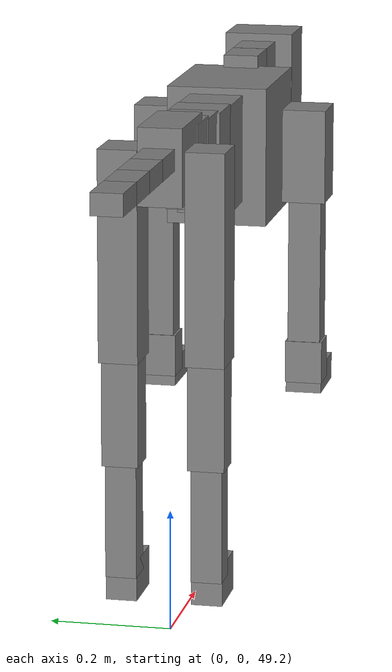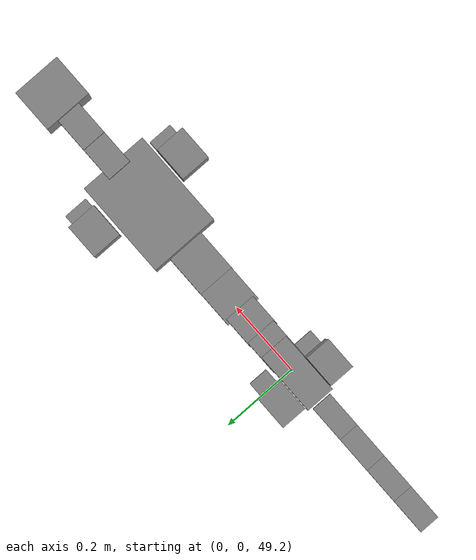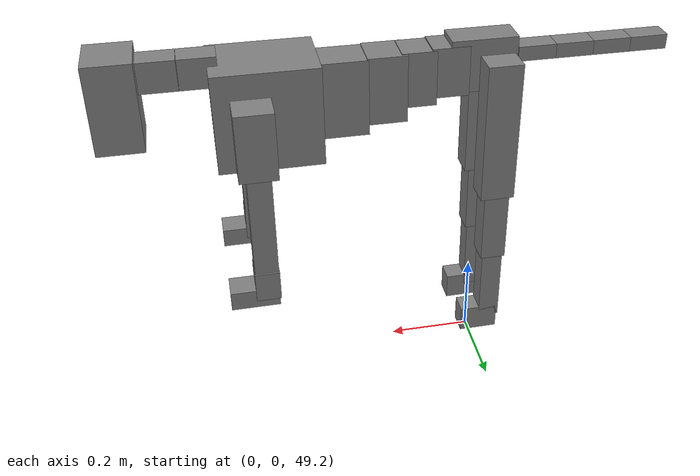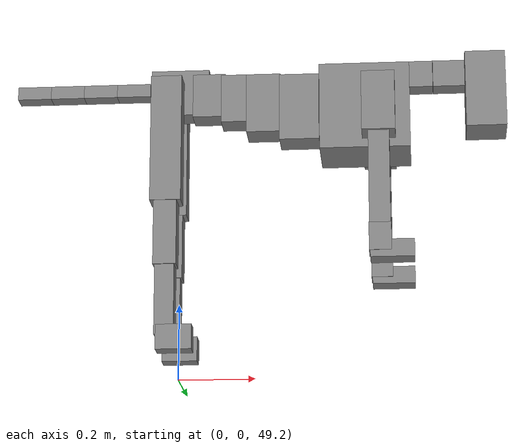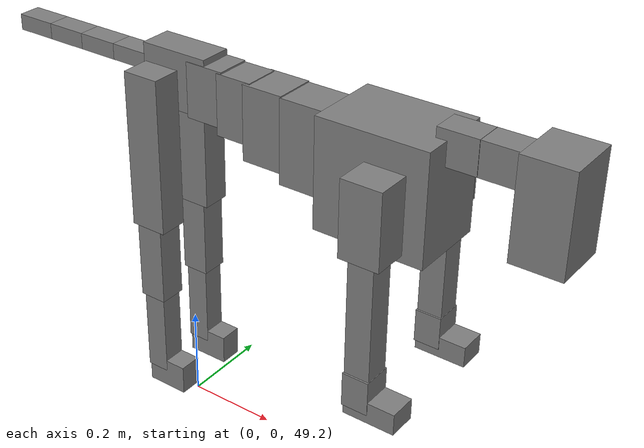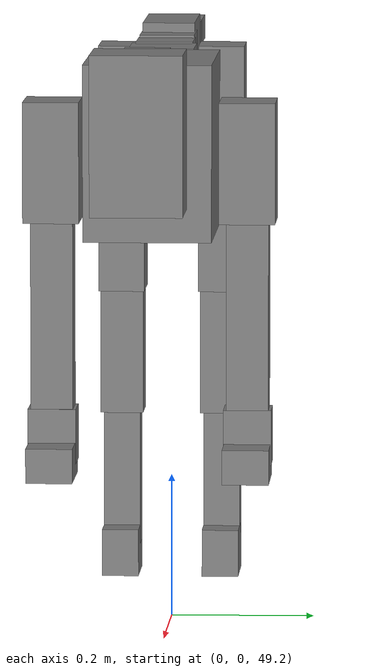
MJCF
<mujoco model="dog">

    <default>
        <joint armature="0.02" stiffness="1" damping="0.2" limited="true"/>
        <geom condim="3" friction="1 0.05 0.05" margin="0.01"/>
        <motor ctrllimited="true" ctrlrange="-1.0 1.0" forcelimited="true" gear="50"/>
    </default>

    <compiler inertiafromgeom="true" angle="radian"/>

    <option timestep="0.016" iterations="50" tolerance="1e-10" solver="Newton" jacobian="dense" cone="pyramidal"/>

    <size nconmax="20000" njmax="60000" nstack="5000000"/>
    <visual>
        <map force="0.1" zfar="30"/>
        <rgba haze="0.15 0.25 0.35 1"/>
        <quality shadowsize="2048"/>
        <global offwidth="800" offheight="800"/>
    </visual>

    <asset>
        <texture type="skybox" builtin="gradient" rgb1="0.3 0.5 0.7" rgb2="0 0 0" width="512" height="512"/>
        <texture name="texplane" type="2d" builtin="checker" rgb1=".2 .3 .4" rgb2=".1 0.15 0.2" width="512" height="512"
                 mark="cross" markrgb=".8 .8 .8"/>
        <texture name="texgeom" type="cube" builtin="flat" mark="cross" width="127" height="1278" rgb1="0.8 0.6 0.4"
                 rgb2="0.8 0.6 0.4" markrgb="1 1 1" random="0.01"/>

        <material name="matplane" reflectance="0.3" texture="texplane" texrepeat="1 1" texuniform="true"/>
        <material name="matgeom" texture="texgeom" texuniform="true" rgba="0.8 0.6 .4 1"/>
    </asset>

    <worldbody>
        <geom name="floor" pos="0 0 0" size="0 0 .25" type="plane" material="matplane" condim="3"/>

        <light directional="false" diffuse=".2 .2 .2" specular="0 0 0" pos="0 0 5" dir="0 0 -1" castshadow="false"/>
        <light mode="targetbodycom" target="torso" directional="false" diffuse=".8 .8 .8" specular="0.3 0.3 0.3"
               pos="0 0 4.0" dir="0 0 -1"/>

        <body name="root" pos="0 0 50">
            <freejoint name="root_1"/>
            <geom type="box" pos="0 0 -0.02" size="0.0774  0.0358  0.063" density="2030"/>

            <body name="spine1" pos="0.054 0 0">
                <joint name="spine1_y" axis="0 1 0" range="0 0.7" limited="true"/>
                <geom type="box" pos="0.02375 0 -0.03" size="0.04375  0.0375  0.05985" density="2030"/>

                <body name="spine2" pos="0.0612 0 0">
                    <joint name="spine2_y" axis="0 1 0" range="-0.15 0.15" limited="true"/>
                    <geom type="box" pos="0.03555  0  -0.04" size="0.04055  0.039  0.06615" density="2030"/>

                    <body name="spine3" pos="0.0730 0 0">
                        <joint name="spine3_y" axis="0 1 0" range="-0.15 0.15" limited="true"/>
                        <geom type="box" pos="0.03555  0  -0.057" size="0.04555  0.0445  0.081" density="2030"/>

                        <body name="spine4" pos="0.0780 0 0">
                            <joint name="spine4_y" axis="0 1 0" range="-0.15 0.15" limited="true"/>
                            <geom type="box" pos="0.05265  0  -0.07" size="0.05265  0.045  0.09135" density="2030"/>

                            <body name="torso" pos="0.1082 0 0">
                                <joint name="torso_y" axis="0 1 0" range="-0.15 0.15" limited="true"/>
                                <geom type="box" pos="0.11925  0  -0.085" size="0.11925  0.085  0.11745"
                                      density="2030"/>

                                <body name="neck1" pos="0.2160  0   0.0180">
                                    <joint name="neck1_y" axis="0 1 0" range="-1.2  -1" limited="true"/>
                                    <geom type="box" pos="0.0423  0  0" size="0.0423  0.03  0.036" density="2325"/>

                                    <body name="neck2" pos="0.0853  0  0">
                                        <joint name="neck2_y" axis="0 1 0" range="0.1  0" limited="true"/>
                                        <geom type="box" pos="0.0423  0  0" size="0.0423  0.03  0.036" density="2325"/>

                                        <body name="head" pos="0.0853  0  0">
                                            <joint name="head_y" axis="0 1 0" range="-0.3  -0.2" limited="true"/>
                                            <geom type="box" pos="0.0531  0  -0.055" size="0.0531  0.06  0.1044"
                                                  density="4030"/>

                                        </body>
                                    </body>
                                </body>

                                <body name="front_shoulder" pos="0.156  0   -0.0480">
                                    <joint name="front_shoulder_y" axis="0 1 0" range="-1 1.5" limited="true"/>
                                    <geom type="box" pos="0 0.13 -0.0538" size="0.0435  0.0372  0.0805" density="1158"/>
                                    <geom type="box" pos="0 -0.13 -0.0538" size="0.0435  0.0372  0.0805"
                                          density="1158"/>

                                    <body name="front_elbow" pos="0  0  -0.1077">
                                        <joint name="front_elbow_y" axis="0 1 0" range="-2 0" limited="true"/>
                                        <geom type="box" pos="0 0.13 -0.1448" size="0.0274  0.0280  0.1448"
                                              density="1081"/>
                                        <geom type="box" pos="0 -0.13 -0.1448" size="0.0274  0.0280  0.1448"
                                              density="1081"/>

                                        <body name="front_wrist" pos="0  0  -0.2895">
                                            <joint name="front_wrist_y" axis="0 1 0" range="-0.2 0" limited="true"/>
                                            <geom type="box" pos="0 0.13 -0.0235" size="0.0287  0.0319  0.0367"
                                                  density="1664"/>
                                            <geom type="box" pos="0 -0.13 -0.0235" size="0.0287  0.0319  0.0367"
                                                  density="1664"/>

                                            <body name="front_finger_end" pos="0  0  -0.0471">
                                                <joint name="front_finger_y" axis="0 1 0" range="-0.4 1"
                                                       limited="true"/>
                                                <geom type="box" pos="0.0309  0.13  -0.0081"
                                                      size="0.0566  0.0309  0.0231" density="1515"/>
                                                <geom type="box" pos="0.0309  -0.13  -0.0081"
                                                      size="0.0566  0.0309  0.0231" density="1515"/>

                                            </body>

                                        </body>
                                    </body>
                                </body>

                            </body>
                        </body>
                    </body>
                </body>
            </body>

            <body name="back_hip" pos="-0.03 0 -0.018">
                <joint name="back_hip_y" axis="0 1 0" range="-1.5 0.3" limited="true"/>
                <geom type="box" pos="0 0.07 -0.1496" size="0.0408  0.0320  0.1724" density="1154"/>
                <geom type="box" pos="0 -0.07 -0.1496" size="0.0408  0.0320  0.1724" density="1154"/>

                <body name="back_knee" pos="0  0  -0.2993">
                    <joint name="back_knee_y" axis="0 1 0" range="0 2.8" limited="true"/>
                    <geom type="box" pos="0 0.07 -0.0900" size="0.0303  0.0298  0.1055" density="1227"/>
                    <geom type="box" pos="0 -0.07 -0.0900" size="0.0303  0.0298  0.1055" density="1227"/>

                    <body name="back_ankle" pos="0  0  -0.1800">
                        <joint name="back_ankle_y" axis="0 1 0" range="-2.2 0" limited="true"/>
                        <geom type="box" pos="0 0.07 -0.0953" size="0.0254  0.0254  0.1066" density="1284"/>
                        <geom type="box" pos="0 -0.07 -0.0953" size="0.0254  0.0254  0.1066" density="1284"/>

                        <body name="back_toe_end" pos="0  0  -0.1906">
                            <joint name="back_toe_y" axis="0 1 0" range="-0.4 1" limited="true"/>
                            <geom type="box" pos="0.0254  0.07  -0.0178" size="0.0466  0.0254  0.0328" density="1515"/>
                            <geom type="box" pos="0.0254  -0.07  -0.0178" size="0.0466  0.0254  0.0328" density="1515"/>

                        </body>
                    </body>
                </body>
            </body>

            <body name="tail1" pos="-0.074 0 -0.006">
                <joint name="tail1_y" axis="0 1 0" range="-0.2 0.2" limited="true"/>
                <geom type="box" pos="-0.0536  0  0" size="0.045  0.025  0.0175" density="1587"/>

                <body name="tail2" pos="-0.09 0 0">
                    <joint name="tail2_y" axis="0 1 0" range="-0.2 0.2" limited="true"/>
                    <geom type="box" pos="-0.0536  0  0" size="0.045  0.025  0.0175" density="1587"/>

                    <body name="tail3" pos="-0.09 0 0">
                        <joint name="tail3_y" axis="0 1 0" range="-0.2 0.2" limited="true"/>
                        <geom type="box" pos="-0.0536  0  0" size="0.045  0.025  0.0175" density="1587"/>

                        <body name="tail4" pos="-0.09 0 0">
                            <joint name="tail4_y" axis="0 1 0" range="-0.2 0.2" limited="true"/>
                            <geom type="box" pos="-0.0536  0  0" size="0.045  0.025  0.0175" density="1587"/>

                        </body>
                    </body>
                </body>
            </body>
        </body>
    </worldbody>

    <actuator>
        <motor joint="spine1_y" forcerange="-150 150     "/>
        <motor joint="spine2_y" forcerange="-150 150     "/>
        <motor joint="spine3_y" forcerange="-150 150     "/>
        <motor joint="spine4_y" forcerange="-150 150     "/>
        <motor joint="torso_y" forcerange="-150 150     "/>
        <motor joint="neck1_y" forcerange="-100 100       "/>
        <motor joint="neck2_y" forcerange="-100 100       "/>
        <motor joint="head_y" forcerange="-150 150       "/>
        <motor joint="front_shoulder_y" forcerange="-181.33 166.37"/>
        <motor joint="front_elbow_y" forcerange="-164.85 138.62"/>
        <motor joint="front_wrist_y" forcerange="-106.10 148.87"/>
        <motor joint="front_finger_y" forcerange="-67.53 57.01"/>
        <motor joint="back_hip_y" forcerange="-263.45 362.84"/>
        <motor joint="back_knee_y" forcerange="-317.95 316.06"/>
        <motor joint="back_angle_y" forcerange="-218.06 88.93"/>
        <motor joint="back_toe_y" forcerange="-68.17 55.28"/>
        <motor joint="tail1_y" forcerange="-50 50     "/>
        <motor joint="tail2_y" forcerange="-50 50     "/>
        <motor joint="tail3_y" forcerange="-50 50     "/>
        <motor joint="tail4_y" forcerange="-50 50     "/>
    </actuator>
</mujoco>
